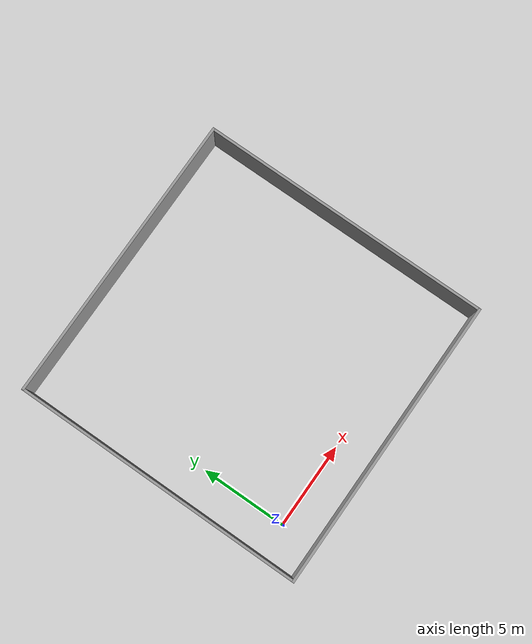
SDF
<?xml version='1.0'?>
<sdf version='1.6'>
  <model name='ped_world'>
    <pose frame=''>6.5 6.5 0 0 -0 0</pose>
    <link name='Wall_1'>
      <collision name='Wall_1_Collision'>
        <geometry>
          <box>
            <size>17.15 0.15 2.5</size>
          </box>
        </geometry>
        <pose frame=''>0 0 1.25 0 -0 0</pose>
      </collision>
      <visual name='Wall_1_Visual'>
        <pose frame=''>0 0 1.25 0 -0 0</pose>
        <geometry>
          <box>
            <size>17.15 0.15 2.5</size>
          </box>
        </geometry>
        <material>
          <script>
            <uri>file://media/materials/scripts/gazebo.material</uri>
            <name>Gazebo/Grey</name>
          </script>
          <ambient>1 1 1 1</ambient>
        </material>
        <meta>
          <layer>0</layer>
        </meta>
      </visual>
      <pose frame=''>-8.5 0 0 0 -0 1.5708</pose>
    </link>
    <link name='Wall_10'>
      <collision name='Wall_10_Collision'>
        <geometry>
          <box>
            <size>17.15 0.15 2.5</size>
          </box>
        </geometry>
        <pose frame=''>0 0 1.25 0 -0 0</pose>
      </collision>
      <visual name='Wall_10_Visual'>
        <pose frame=''>0 0 1.25 0 -0 0</pose>
        <geometry>
          <box>
            <size>17.15 0.15 2.5</size>
          </box>
        </geometry>
        <material>
          <script>
            <uri>file://media/materials/scripts/gazebo.material</uri>
            <name>Gazebo/Grey</name>
          </script>
          <ambient>1 1 1 1</ambient>
        </material>
        <meta>
          <layer>0</layer>
        </meta>
      </visual>
      <pose frame=''>0 8.5 0 0 -0 0</pose>
    </link>
    <link name='Wall_5'>
      <collision name='Wall_5_Collision'>
        <geometry>
          <box>
            <size>17.15 0.15 2.5</size>
          </box>
        </geometry>
        <pose frame=''>0 0 1.25 0 -0 0</pose>
      </collision>
      <visual name='Wall_5_Visual'>
        <pose frame=''>0 0 1.25 0 -0 0</pose>
        <geometry>
          <box>
            <size>17.15 0.15 2.5</size>
          </box>
        </geometry>
        <material>
          <script>
            <uri>file://media/materials/scripts/gazebo.material</uri>
            <name>Gazebo/Grey</name>
          </script>
          <ambient>1 1 1 1</ambient>
        </material>
        <meta>
          <layer>0</layer>
        </meta>
      </visual>
      <pose frame=''>0 -8.5 0 0 -0 0</pose>
    </link>
    <link name='Wall_8'>
      <collision name='Wall_8_Collision'>
        <geometry>
          <box>
            <size>17.15 0.15 2.5</size>
          </box>
        </geometry>
        <pose frame=''>0 0 1.25 0 -0 0</pose>
      </collision>
      <visual name='Wall_8_Visual'>
        <pose frame=''>0 0 1.25 0 -0 0</pose>
        <geometry>
          <box>
            <size>17.15 0.15 2.5</size>
          </box>
        </geometry>
        <material>
          <script>
            <uri>file://media/materials/scripts/gazebo.material</uri>
            <name>Gazebo/Grey</name>
          </script>
          <ambient>1 1 1 1</ambient>
        </material>
        <meta>
          <layer>0</layer>
        </meta>
      </visual>
      <pose frame=''>8.5 0 0 0 -0 -1.5708</pose>
    </link>
    <static>1</static>
  </model>
</sdf>
